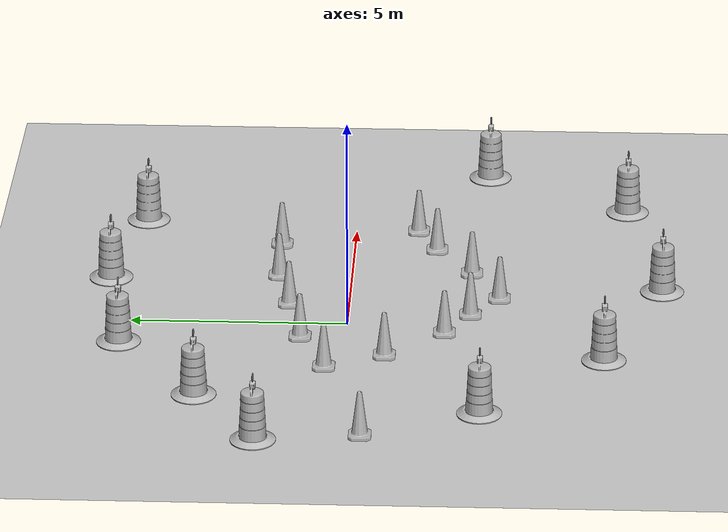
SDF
<sdf version="1.7">
 <world name="default">
  <light name="sun" type="directional">
   <pose>0 0 10 0 -0 0</pose>
   <diffuse>0.8 0.8 0.8 1</diffuse>
   <specular>0.2 0.2 0.2 1</specular>
   <attenuation>
    <range>1000</range>
    <constant>0.9</constant>
    <linear>0.01</linear>
    <quadratic>0.001</quadratic>
   </attenuation>
   <direction>-0.5 0.1 -0.9</direction>
   <spot><inner_angle>0</inner_angle><outer_angle>0</outer_angle><falloff>0</falloff></spot>
  </light>
  <model name="ground_plane">
   <static>1</static>
   <link name="link">
    <collision name="collision">
     <geometry><plane><normal>0 0 1</normal><size>100 100</size></plane></geometry>
     <surface>
      <contact><collide_bitmask>65535</collide_bitmask></contact>
      <friction><ode><mu>100</mu><mu2>50</mu2></ode></friction>
     </surface>
    </collision>
    <visual name="visual">
     <cast_shadows>0</cast_shadows>
     <geometry><plane><normal>0 0 1</normal><size>100 100</size></plane></geometry>
     <material>
      <script><uri>file://media/materials/scripts/gazebo.material</uri><name>Gazebo/Grey</name></script>
     </material>
    </visual>
   </link>
  </model>
  <gravity>0 0 -9.8</gravity>
  <magnetic_field>6e-06 2.3e-05 -4.2e-05</magnetic_field>
  <atmosphere type="adiabatic"/>
  <physics type="ode">
   <max_step_size>0.001</max_step_size>
   <real_time_factor>1</real_time_factor>
   <real_time_update_rate>1000</real_time_update_rate>
  </physics>
  <scene><ambient>0.4 0.4 0.4 1</ambient><background>0.7 0.7 0.7 1</background><shadows>1</shadows></scene>
  <audio><device>default</device></audio>
  <spherical_coordinates>
   <surface_model>EARTH_WGS84</surface_model>
   <latitude_deg>0</latitude_deg>
   <longitude_deg>0</longitude_deg>
   <elevation>0</elevation>
   <heading_deg>0</heading_deg>
  </spherical_coordinates>
  <model name="Construction Barrel">
   <link name="link">
    <inertial>
     <pose>0 0 0.4 0 -0 0</pose>
     <mass>500</mass>
     <inertia><ixx>51.2096</ixx><iyy>51.2096</iyy><izz>25</izz><ixy>0</ixy><ixz>0</ixz><iyz>0</iyz></inertia>
    </inertial>
    <collision name="collision">
     <geometry><mesh><uri>model://construction_barrel/meshes/construction_barrel.dae</uri></mesh></geometry>
    </collision>
    <visual name="visual">
     <geometry><mesh><uri>model://construction_barrel/meshes/construction_barrel.dae</uri></mesh></geometry>
    </visual>
   </link>
   <pose>8.25555 -3.11578 -0 0 0 -3.4e-05</pose>
  </model>
  <model name="Construction Barrel_0">
   <link name="link">
    <inertial>
     <pose>0 0 0.4 0 -0 0</pose>
     <mass>500</mass>
     <inertia><ixx>51.2096</ixx><iyy>51.2096</iyy><izz>25</izz><ixy>0</ixy><ixz>0</ixz><iyz>0</iyz></inertia>
    </inertial>
    <collision name="collision">
     <geometry><mesh><uri>model://construction_barrel/meshes/construction_barrel.dae</uri></mesh></geometry>
    </collision>
    <visual name="visual">
     <geometry><mesh><uri>model://construction_barrel/meshes/construction_barrel.dae</uri></mesh></geometry>
    </visual>
   </link>
   <pose>6.35082 -6.45092 -0 0 0 -3.3e-05</pose>
  </model>
  <model name="Construction Barrel_1">
   <link name="link">
    <inertial>
     <pose>0 0 0.4 0 -0 0</pose>
     <mass>500</mass>
     <inertia><ixx>51.2096</ixx><iyy>51.2096</iyy><izz>25</izz><ixy>0</ixy><ixz>0</ixz><iyz>0</iyz></inertia>
    </inertial>
    <collision name="collision">
     <geometry><mesh><uri>model://construction_barrel/meshes/construction_barrel.dae</uri></mesh></geometry>
    </collision>
    <visual name="visual">
     <geometry><mesh><uri>model://construction_barrel/meshes/construction_barrel.dae</uri></mesh></geometry>
    </visual>
   </link>
   <pose>1.97394 -7.24156 -0 0 0 -3.2e-05</pose>
  </model>
  <model name="Construction Barrel_2">
   <link name="link">
    <inertial>
     <pose>0 0 0.4 0 -0 0</pose>
     <mass>500</mass>
     <inertia><ixx>51.2096</ixx><iyy>51.2096</iyy><izz>25</izz><ixy>0</ixy><ixz>0</ixz><iyz>0</iyz></inertia>
    </inertial>
    <collision name="collision">
     <geometry><mesh><uri>model://construction_barrel/meshes/construction_barrel.dae</uri></mesh></geometry>
    </collision>
    <visual name="visual">
     <geometry><mesh><uri>model://construction_barrel/meshes/construction_barrel.dae</uri></mesh></geometry>
    </visual>
   </link>
   <pose>-1.66064 -5.88783 -0 0 0 -3.1e-05</pose>
  </model>
  <model name="Construction Barrel_3">
   <link name="link">
    <inertial>
     <pose>0 0 0.4 0 -0 0</pose>
     <mass>500</mass>
     <inertia><ixx>51.2096</ixx><iyy>51.2096</iyy><izz>25</izz><ixy>0</ixy><ixz>0</ixz><iyz>0</iyz></inertia>
    </inertial>
    <collision name="collision">
     <geometry><mesh><uri>model://construction_barrel/meshes/construction_barrel.dae</uri></mesh></geometry>
    </collision>
    <visual name="visual">
     <geometry><mesh><uri>model://construction_barrel/meshes/construction_barrel.dae</uri></mesh></geometry>
    </visual>
   </link>
   <pose>-4.40561 -3.12632 -0 0 0 -3e-05</pose>
  </model>
  <model name="Construction Barrel_4">
   <link name="link">
    <inertial>
     <pose>0 0 0.4 0 -0 0</pose>
     <mass>500</mass>
     <inertia><ixx>51.2096</ixx><iyy>51.2096</iyy><izz>25</izz><ixy>0</ixy><ixz>0</ixz><iyz>0</iyz></inertia>
    </inertial>
    <collision name="collision">
     <geometry><mesh><uri>model://construction_barrel/meshes/construction_barrel.dae</uri></mesh></geometry>
    </collision>
    <visual name="visual">
     <geometry><mesh><uri>model://construction_barrel/meshes/construction_barrel.dae</uri></mesh></geometry>
    </visual>
   </link>
   <pose>-5.85642 1.81591 -0 0 0 -2.8e-05</pose>
  </model>
  <model name="Construction Barrel_5">
   <link name="link">
    <inertial>
     <pose>0 0 0.4 0 -0 0</pose>
     <mass>500</mass>
     <inertia><ixx>51.2096</ixx><iyy>51.2096</iyy><izz>25</izz><ixy>0</ixy><ixz>0</ixz><iyz>0</iyz></inertia>
    </inertial>
    <collision name="collision">
     <geometry><mesh><uri>model://construction_barrel/meshes/construction_barrel.dae</uri></mesh></geometry>
    </collision>
    <visual name="visual">
     <geometry><mesh><uri>model://construction_barrel/meshes/construction_barrel.dae</uri></mesh></geometry>
    </visual>
   </link>
   <pose>-3.71185 3.27656 -0 0 0 -2.7e-05</pose>
  </model>
  <model name="Construction Barrel_6">
   <link name="link">
    <inertial>
     <pose>0 0 0.4 0 -0 0</pose>
     <mass>500</mass>
     <inertia><ixx>51.2096</ixx><iyy>51.2096</iyy><izz>25</izz><ixy>0</ixy><ixz>0</ixz><iyz>0</iyz></inertia>
    </inertial>
    <collision name="collision">
     <geometry><mesh><uri>model://construction_barrel/meshes/construction_barrel.dae</uri></mesh></geometry>
    </collision>
    <visual name="visual">
     <geometry><mesh><uri>model://construction_barrel/meshes/construction_barrel.dae</uri></mesh></geometry>
    </visual>
   </link>
   <pose>-1.11226 5.18773 -0 0 0 -2.6e-05</pose>
  </model>
  <model name="Construction Barrel_7">
   <link name="link">
    <inertial>
     <pose>0 0 0.4 0 -0 0</pose>
     <mass>500</mass>
     <inertia><ixx>51.2096</ixx><iyy>51.2096</iyy><izz>25</izz><ixy>0</ixy><ixz>0</ixz><iyz>0</iyz></inertia>
    </inertial>
    <collision name="collision">
     <geometry><mesh><uri>model://construction_barrel/meshes/construction_barrel.dae</uri></mesh></geometry>
    </collision>
    <visual name="visual">
     <geometry><mesh><uri>model://construction_barrel/meshes/construction_barrel.dae</uri></mesh></geometry>
    </visual>
   </link>
   <pose>2.27152 5.64934 -0 0 0 -2.5e-05</pose>
  </model>
  <model name="Construction Barrel_8">
   <link name="link">
    <inertial>
     <pose>0 0 0.4 0 -0 0</pose>
     <mass>500</mass>
     <inertia><ixx>51.2096</ixx><iyy>51.2096</iyy><izz>25</izz><ixy>0</ixy><ixz>0</ixz><iyz>0</iyz></inertia>
    </inertial>
    <collision name="collision">
     <geometry><mesh><uri>model://construction_barrel/meshes/construction_barrel.dae</uri></mesh></geometry>
    </collision>
    <visual name="visual">
     <geometry><mesh><uri>model://construction_barrel/meshes/construction_barrel.dae</uri></mesh></geometry>
    </visual>
   </link>
   <pose>5.49409 5.02918 -0 0 0 -2.4e-05</pose>
  </model>
  <model name="Construction Cone">
   <link name="link">
    <collision name="collision">
     <geometry>
      <mesh><scale>10 10 10</scale><uri>model://construction_cone/meshes/construction_cone.dae</uri></mesh>
     </geometry>
    </collision>
    <visual name="visual">
     <geometry>
      <mesh><scale>10 10 10</scale><uri>model://construction_cone/meshes/construction_cone.dae</uri></mesh>
     </geometry>
    </visual>
    <inertial>
     <inertia><ixx>1</ixx><ixy>0</ixy><ixz>0</ixz><iyy>1</iyy><iyz>0</iyz><izz>1</izz></inertia>
     <mass>1</mass>
    </inertial>
   </link>
   <pose>5.05998 -1.47345 -0 0 -0 0</pose>
  </model>
  <model name="Construction Cone_0">
   <link name="link">
    <collision name="collision">
     <geometry>
      <mesh><scale>10 10 10</scale><uri>model://construction_cone/meshes/construction_cone.dae</uri></mesh>
     </geometry>
    </collision>
    <visual name="visual">
     <geometry>
      <mesh><scale>10 10 10</scale><uri>model://construction_cone/meshes/construction_cone.dae</uri></mesh>
     </geometry>
    </visual>
    <inertial>
     <inertia><ixx>1</ixx><ixy>0</ixy><ixz>0</ixz><iyy>1</iyy><iyz>0</iyz><izz>1</izz></inertia>
     <mass>1</mass>
    </inertial>
   </link>
   <pose>4.03737 -1.94244 -0 0 -0 0</pose>
  </model>
  <model name="Construction Cone_1">
   <link name="link">
    <collision name="collision">
     <geometry>
      <mesh><scale>10 10 10</scale><uri>model://construction_cone/meshes/construction_cone.dae</uri></mesh>
     </geometry>
    </collision>
    <visual name="visual">
     <geometry>
      <mesh><scale>10 10 10</scale><uri>model://construction_cone/meshes/construction_cone.dae</uri></mesh>
     </geometry>
    </visual>
    <inertial>
     <inertia><ixx>1</ixx><ixy>0</ixy><ixz>0</ixz><iyy>1</iyy><iyz>0</iyz><izz>1</izz></inertia>
     <mass>1</mass>
    </inertial>
   </link>
   <pose>2.77631 -2.79259 -0 0 -1e-06 0</pose>
  </model>
  <model name="Construction Cone_2">
   <link name="link">
    <collision name="collision">
     <geometry>
      <mesh><scale>10 10 10</scale><uri>model://construction_cone/meshes/construction_cone.dae</uri></mesh>
     </geometry>
    </collision>
    <visual name="visual">
     <geometry>
      <mesh><scale>10 10 10</scale><uri>model://construction_cone/meshes/construction_cone.dae</uri></mesh>
     </geometry>
    </visual>
    <inertial>
     <inertia><ixx>1</ixx><ixy>0</ixy><ixz>0</ixz><iyy>1</iyy><iyz>0</iyz><izz>1</izz></inertia>
     <mass>1</mass>
    </inertial>
   </link>
   <pose>1.43545 -3.46563 0 -0 -0 -0</pose>
  </model>
  <model name="Construction Cone_3">
   <link name="link">
    <collision name="collision">
     <geometry>
      <mesh><scale>10 10 10</scale><uri>model://construction_cone/meshes/construction_cone.dae</uri></mesh>
     </geometry>
    </collision>
    <visual name="visual">
     <geometry>
      <mesh><scale>10 10 10</scale><uri>model://construction_cone/meshes/construction_cone.dae</uri></mesh>
     </geometry>
    </visual>
    <inertial>
     <inertia><ixx>1</ixx><ixy>0</ixy><ixz>0</ixz><iyy>1</iyy><iyz>0</iyz><izz>1</izz></inertia>
     <mass>1</mass>
    </inertial>
   </link>
   <pose>-0.417348 -2.23649 -0 0 -0 0</pose>
  </model>
  <model name="Construction Cone_4">
   <link name="link">
    <collision name="collision">
     <geometry>
      <mesh><scale>10 10 10</scale><uri>model://construction_cone/meshes/construction_cone.dae</uri></mesh>
     </geometry>
    </collision>
    <visual name="visual">
     <geometry>
      <mesh><scale>10 10 10</scale><uri>model://construction_cone/meshes/construction_cone.dae</uri></mesh>
     </geometry>
    </visual>
    <inertial>
     <inertia><ixx>1</ixx><ixy>0</ixy><ixz>0</ixz><iyy>1</iyy><iyz>0</iyz><izz>1</izz></inertia>
     <mass>1</mass>
    </inertial>
   </link>
   <pose>0.555525 -2.81014 -0 0 -1e-06 0</pose>
  </model>
  <model name="Construction Cone_5">
   <link name="link">
    <collision name="collision">
     <geometry>
      <mesh><scale>10 10 10</scale><uri>model://construction_cone/meshes/construction_cone.dae</uri></mesh>
     </geometry>
    </collision>
    <visual name="visual">
     <geometry>
      <mesh><scale>10 10 10</scale><uri>model://construction_cone/meshes/construction_cone.dae</uri></mesh>
     </geometry>
    </visual>
    <inertial>
     <inertia><ixx>1</ixx><ixy>0</ixy><ixz>0</ixz><iyy>1</iyy><iyz>0</iyz><izz>1</izz></inertia>
     <mass>1</mass>
    </inertial>
   </link>
   <pose>-1.6138 -0.907082 -0 0 -0 0</pose>
  </model>
  <model name="Construction Cone_6">
   <link name="link">
    <collision name="collision">
     <geometry>
      <mesh><scale>10 10 10</scale><uri>model://construction_cone/meshes/construction_cone.dae</uri></mesh>
     </geometry>
    </collision>
    <visual name="visual">
     <geometry>
      <mesh><scale>10 10 10</scale><uri>model://construction_cone/meshes/construction_cone.dae</uri></mesh>
     </geometry>
    </visual>
    <inertial>
     <inertia><ixx>1</ixx><ixy>0</ixy><ixz>0</ixz><iyy>1</iyy><iyz>0</iyz><izz>1</izz></inertia>
     <mass>1</mass>
    </inertial>
   </link>
   <pose>-2.24224 0.438164 -0 0 -0 0</pose>
  </model>
  <model name="Construction Cone_7">
   <link name="link">
    <collision name="collision">
     <geometry>
      <mesh><scale>10 10 10</scale><uri>model://construction_cone/meshes/construction_cone.dae</uri></mesh>
     </geometry>
    </collision>
    <visual name="visual">
     <geometry>
      <mesh><scale>10 10 10</scale><uri>model://construction_cone/meshes/construction_cone.dae</uri></mesh>
     </geometry>
    </visual>
    <inertial>
     <inertia><ixx>1</ixx><ixy>0</ixy><ixz>0</ixz><iyy>1</iyy><iyz>0</iyz><izz>1</izz></inertia>
     <mass>1</mass>
    </inertial>
   </link>
   <pose>-5.58633 -0.523876 -0 1e-06 -0 0</pose>
  </model>
  <model name="Construction Cone_8">
   <link name="link">
    <collision name="collision">
     <geometry>
      <mesh><scale>10 10 10</scale><uri>model://construction_cone/meshes/construction_cone.dae</uri></mesh>
     </geometry>
    </collision>
    <visual name="visual">
     <geometry>
      <mesh><scale>10 10 10</scale><uri>model://construction_cone/meshes/construction_cone.dae</uri></mesh>
     </geometry>
    </visual>
    <inertial>
     <inertia><ixx>1</ixx><ixy>0</ixy><ixz>0</ixz><iyy>1</iyy><iyz>0</iyz><izz>1</izz></inertia>
     <mass>1</mass>
    </inertial>
   </link>
   <pose>-0.721824 1.05635 -0 0 -0 0</pose>
  </model>
  <model name="Construction Cone_9">
   <link name="link">
    <collision name="collision">
     <geometry>
      <mesh><scale>10 10 10</scale><uri>model://construction_cone/meshes/construction_cone.dae</uri></mesh>
     </geometry>
    </collision>
    <visual name="visual">
     <geometry>
      <mesh><scale>10 10 10</scale><uri>model://construction_cone/meshes/construction_cone.dae</uri></mesh>
     </geometry>
    </visual>
    <inertial>
     <inertia><ixx>1</ixx><ixy>0</ixy><ixz>0</ixz><iyy>1</iyy><iyz>0</iyz><izz>1</izz></inertia>
     <mass>1</mass>
    </inertial>
   </link>
   <pose>0.998585 1.40019 -1e-05 0 -0 0</pose>
  </model>
  <model name="Construction Cone_10">
   <link name="link">
    <collision name="collision">
     <geometry>
      <mesh><scale>10 10 10</scale><uri>model://construction_cone/meshes/construction_cone.dae</uri></mesh>
     </geometry>
    </collision>
    <visual name="visual">
     <geometry>
      <mesh><scale>10 10 10</scale><uri>model://construction_cone/meshes/construction_cone.dae</uri></mesh>
     </geometry>
    </visual>
    <inertial>
     <inertia><ixx>1</ixx><ixy>0</ixy><ixz>0</ixz><iyy>1</iyy><iyz>0</iyz><izz>1</izz></inertia>
     <mass>1</mass>
    </inertial>
   </link>
   <pose>2.49552 1.71153 -0 0 -1e-06 0</pose>
  </model>
  <model name="Construction Cone_11">
   <link name="link">
    <collision name="collision">
     <geometry>
      <mesh><scale>10 10 10</scale><uri>model://construction_cone/meshes/construction_cone.dae</uri></mesh>
     </geometry>
    </collision>
    <visual name="visual">
     <geometry>
      <mesh><scale>10 10 10</scale><uri>model://construction_cone/meshes/construction_cone.dae</uri></mesh>
     </geometry>
    </visual>
    <inertial>
     <inertia><ixx>1</ixx><ixy>0</ixy><ixz>0</ixz><iyy>1</iyy><iyz>0</iyz><izz>1</izz></inertia>
     <mass>1</mass>
    </inertial>
   </link>
   <pose>4.23463 1.74742 -0 0 -0 0</pose>
  </model>
 </world>
</sdf>
